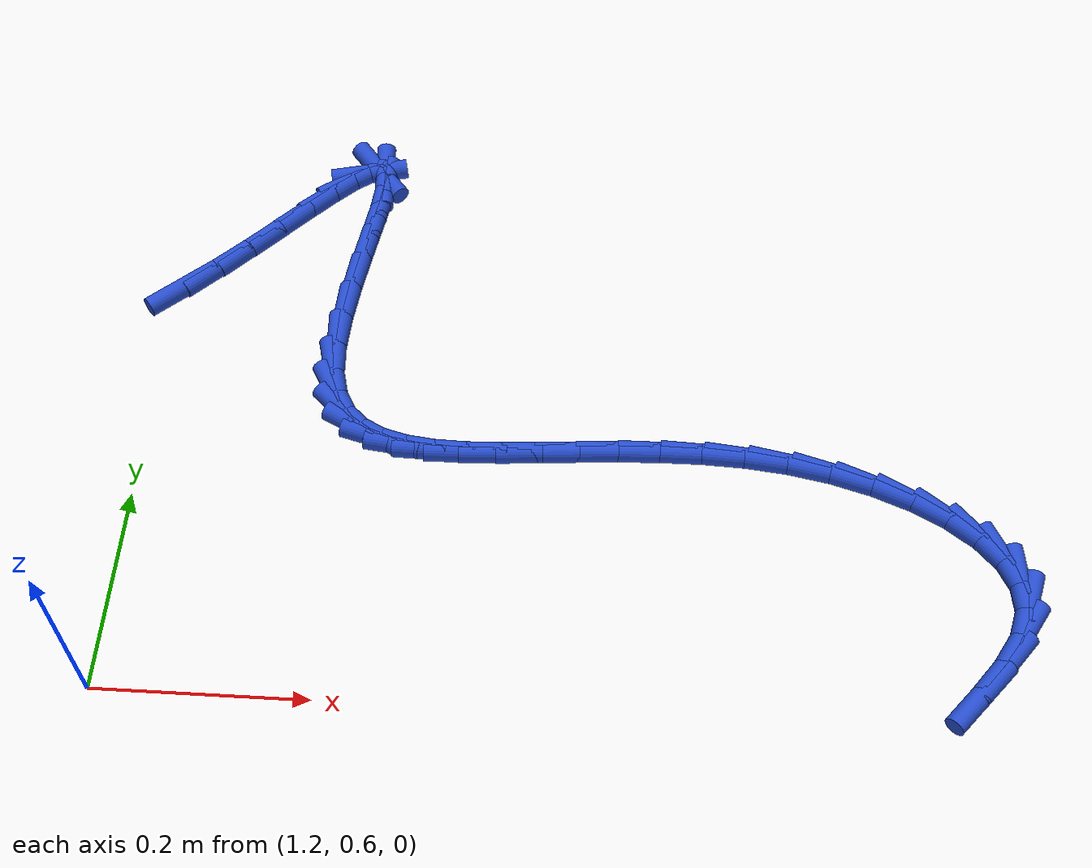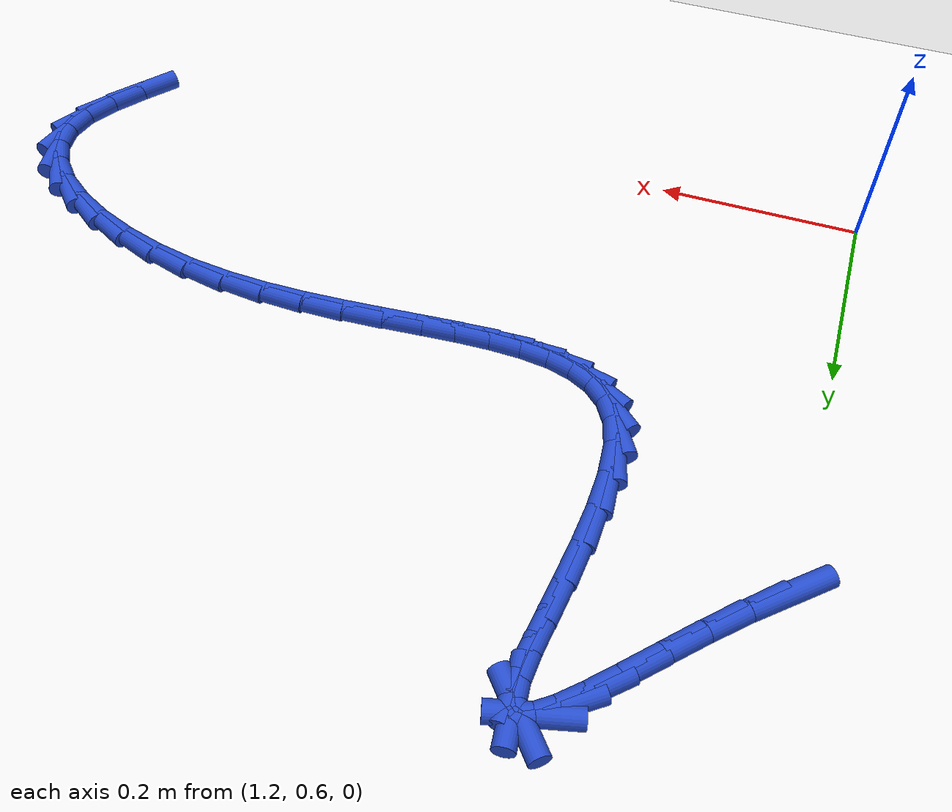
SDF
<sdf version="1.6">
 <world name="default">
  <model name="ground_plane">
   <static>1</static>
   <link name="link">
    <collision name="collision">
     <geometry><plane><normal>0 0 1</normal><size>100 100</size></plane></geometry>
     <surface><friction><ode><mu>100</mu><mu2>50</mu2></ode></friction></surface>
    </collision>
    <visual name="visual">
     <cast_shadows>0</cast_shadows>
     <geometry><plane><normal>0 0 1</normal><size>100 100</size></plane></geometry>
     <material>
      <script><uri>file://media/materials/scripts/gazebo.material</uri><name>Gazebo/WhiteGlow</name></script>
     </material>
    </visual>
   </link>
  </model>
  <model name="line">
   <link name="link_66">
    <pose>1.2069231784694563 1.0390649174627036 0.01 0 1.57 0.7264530151013725</pose>
    <collision name="collision">
     <geometry><cylinder><radius>0.01</radius><length>0.08</length></cylinder></geometry>
    </collision>
    <visual name="visual">
     <material>
      <script><name>Gazebo/Blue</name><uri>file://media/materials/scripts/gazebo.material</uri></script>
     </material>
     <geometry><cylinder><radius>0.01</radius><length>0.08</length></cylinder></geometry>
    </visual>
   </link>
   <link name="link_67">
    <pose>1.2372628866293298 1.0660232660507316 0.01 0 1.57 0.7736406593499286</pose>
    <collision name="collision">
     <geometry><cylinder><radius>0.01</radius><length>0.08</length></cylinder></geometry>
    </collision>
    <visual name="visual">
     <material>
      <script><name>Gazebo/Blue</name><uri>file://media/materials/scripts/gazebo.material</uri></script>
     </material>
     <geometry><cylinder><radius>0.01</radius><length>0.08</length></cylinder></geometry>
    </visual>
   </link>
   <link name="link_68">
    <pose>1.2665523473944107 1.0946319576847547 0.01 0 1.57 0.8011044781243333</pose>
    <collision name="collision">
     <geometry><cylinder><radius>0.01</radius><length>0.08</length></cylinder></geometry>
    </collision>
    <visual name="visual">
     <material>
      <script><name>Gazebo/Blue</name><uri>file://media/materials/scripts/gazebo.material</uri></script>
     </material>
     <geometry><cylinder><radius>0.01</radius><length>0.08</length></cylinder></geometry>
    </visual>
   </link>
   <link name="link_69">
    <pose>1.294223182612607 1.1231859503681776 0.01 0 1.57 0.8104592556146465</pose>
    <collision name="collision">
     <geometry><cylinder><radius>0.01</radius><length>0.08</length></cylinder></geometry>
    </collision>
    <visual name="visual">
     <material>
      <script><name>Gazebo/Blue</name><uri>file://media/materials/scripts/gazebo.material</uri></script>
     </material>
     <geometry><cylinder><radius>0.01</radius><length>0.08</length></cylinder></geometry>
    </visual>
   </link>
   <link name="link_70">
    <pose>1.3197070141318266 1.1499802021044045 0.01 0 1.57 0.7984466257177439</pose>
    <collision name="collision">
     <geometry><cylinder><radius>0.01</radius><length>0.08</length></cylinder></geometry>
    </collision>
    <visual name="visual">
     <material>
      <script><name>Gazebo/Blue</name><uri>file://media/materials/scripts/gazebo.material</uri></script>
     </material>
     <geometry><cylinder><radius>0.01</radius><length>0.08</length></cylinder></geometry>
    </visual>
   </link>
   <link name="link_71">
    <pose>1.342435463799977 1.1733096708968396 0.01 0 1.57 0.7522659317770498</pose>
    <collision name="collision">
     <geometry><cylinder><radius>0.01</radius><length>0.08</length></cylinder></geometry>
    </collision>
    <visual name="visual">
     <material>
      <script><name>Gazebo/Blue</name><uri>file://media/materials/scripts/gazebo.material</uri></script>
     </material>
     <geometry><cylinder><radius>0.01</radius><length>0.08</length></cylinder></geometry>
    </visual>
   </link>
   <link name="link_72">
    <pose>1.361840153464966 1.191469314748888 0.01 0 1.57 0.6289194446462302</pose>
    <collision name="collision">
     <geometry><cylinder><radius>0.01</radius><length>0.08</length></cylinder></geometry>
    </collision>
    <visual name="visual">
     <material>
      <script><name>Gazebo/Blue</name><uri>file://media/materials/scripts/gazebo.material</uri></script>
     </material>
     <geometry><cylinder><radius>0.01</radius><length>0.08</length></cylinder></geometry>
    </visual>
   </link>
   <link name="link_73">
    <pose>1.3773527049747019 1.2027540916639532 0.01 0 1.57 0.2400213735099397</pose>
    <collision name="collision">
     <geometry><cylinder><radius>0.01</radius><length>0.08</length></cylinder></geometry>
    </collision>
    <visual name="visual">
     <material>
      <script><name>Gazebo/Blue</name><uri>file://media/materials/scripts/gazebo.material</uri></script>
     </material>
     <geometry><cylinder><radius>0.01</radius><length>0.08</length></cylinder></geometry>
    </visual>
   </link>
   <link name="link_74">
    <pose>1.3884047401770923 1.2054589596454406 0.01 0 1.57 -0.8916329751993161</pose>
    <collision name="collision">
     <geometry><cylinder><radius>0.01</radius><length>0.08</length></cylinder></geometry>
    </collision>
    <visual name="visual">
     <material>
      <script><name>Gazebo/Blue</name><uri>file://media/materials/scripts/gazebo.material</uri></script>
     </material>
     <geometry><cylinder><radius>0.01</radius><length>0.08</length></cylinder></geometry>
    </visual>
   </link>
   <link name="link_75">
    <pose>1.3944635298059607 1.1979537563542686 0.01 0 1.57 -1.4926427483449498</pose>
    <collision name="collision">
     <geometry><cylinder><radius>0.01</radius><length>0.08</length></cylinder></geometry>
    </collision>
    <visual name="visual">
     <material>
      <script><name>Gazebo/Blue</name><uri>file://media/materials/scripts/gazebo.material</uri></script>
     </material>
     <geometry><cylinder><radius>0.01</radius><length>0.08</length></cylinder></geometry>
    </visual>
   </link>
   <link name="link_76">
    <pose>1.3958397885504943 1.1803799539046456 0.01 0 1.57 1.4877689884094474</pose>
    <collision name="collision">
     <geometry><cylinder><radius>0.01</radius><length>0.08</length></cylinder></geometry>
    </collision>
    <visual name="visual">
     <material>
      <script><name>Gazebo/Blue</name><uri>file://media/materials/scripts/gazebo.material</uri></script>
     </material>
     <geometry><cylinder><radius>0.01</radius><length>0.08</length></cylinder></geometry>
    </visual>
   </link>
   <link name="link_77">
    <pose>1.3937009521776211 1.1546785471514847 0.01 0 1.57 1.4318504602034439</pose>
    <collision name="collision">
     <geometry><cylinder><radius>0.01</radius><length>0.08</length></cylinder></geometry>
    </collision>
    <visual name="visual">
     <material>
      <script><name>Gazebo/Blue</name><uri>file://media/materials/scripts/gazebo.material</uri></script>
     </material>
     <geometry><cylinder><radius>0.01</radius><length>0.08</length></cylinder></geometry>
    </visual>
   </link>
   <link name="link_78">
    <pose>1.3892527609677348 1.1228709886912491 0.01 0 1.57 1.417332769120097</pose>
    <collision name="collision">
     <geometry><cylinder><radius>0.01</radius><length>0.08</length></cylinder></geometry>
    </collision>
    <visual name="visual">
     <material>
      <script><name>Gazebo/Blue</name><uri>file://media/materials/scripts/gazebo.material</uri></script>
     </material>
     <geometry><cylinder><radius>0.01</radius><length>0.08</length></cylinder></geometry>
    </visual>
   </link>
   <link name="link_79">
    <pose>1.38370095520123 1.086978731120404 0.01 0 1.57 1.4281902014077674</pose>
    <collision name="collision">
     <geometry><cylinder><radius>0.01</radius><length>0.08</length></cylinder></geometry>
    </collision>
    <visual name="visual">
     <material>
      <script><name>Gazebo/Blue</name><uri>file://media/materials/scripts/gazebo.material</uri></script>
     </material>
     <geometry><cylinder><radius>0.01</radius><length>0.08</length></cylinder></geometry>
    </visual>
   </link>
   <link name="link_80">
    <pose>1.378251275158501 1.049023227035412 0.01 0 1.57 1.4622221283548353</pose>
    <collision name="collision">
     <geometry><cylinder><radius>0.01</radius><length>0.08</length></cylinder></geometry>
    </collision>
    <visual name="visual">
     <material>
      <script><name>Gazebo/Blue</name><uri>file://media/materials/scripts/gazebo.material</uri></script>
     </material>
     <geometry><cylinder><radius>0.01</radius><length>0.08</length></cylinder></geometry>
    </visual>
   </link>
   <link name="link_81">
    <pose>1.3741094611199414 1.0110259290327375 0.01 0 1.57 1.5256212396820565</pose>
    <collision name="collision">
     <geometry><cylinder><radius>0.01</radius><length>0.08</length></cylinder></geometry>
    </collision>
    <visual name="visual">
     <material>
      <script><name>Gazebo/Blue</name><uri>file://media/materials/scripts/gazebo.material</uri></script>
     </material>
     <geometry><cylinder><radius>0.01</radius><length>0.08</length></cylinder></geometry>
    </visual>
   </link>
   <link name="link_82">
    <pose>1.3724812533659456 0.9750082897088439 0.01 0 1.57 -1.5055746131538927</pose>
    <collision name="collision">
     <geometry><cylinder><radius>0.01</radius><length>0.08</length></cylinder></geometry>
    </collision>
    <visual name="visual">
     <material>
      <script><name>Gazebo/Blue</name><uri>file://media/materials/scripts/gazebo.material</uri></script>
     </material>
     <geometry><cylinder><radius>0.01</radius><length>0.08</length></cylinder></geometry>
    </visual>
   </link>
   <link name="link_83">
    <pose>1.374572392176908 0.9429917616601949 0.01 0 1.57 -1.3139538369100603</pose>
    <collision name="collision">
     <geometry><cylinder><radius>0.01</radius><length>0.08</length></cylinder></geometry>
    </collision>
    <visual name="visual">
     <material>
      <script><name>Gazebo/Blue</name><uri>file://media/materials/scripts/gazebo.material</uri></script>
     </material>
     <geometry><cylinder><radius>0.01</radius><length>0.08</length></cylinder></geometry>
    </visual>
   </link>
   <link name="link_84">
    <pose>1.381458018715188 0.916775126084228 0.01 0 1.57 -1.0457845037083737</pose>
    <collision name="collision">
     <geometry><cylinder><radius>0.01</radius><length>0.08</length></cylinder></geometry>
    </collision>
    <visual name="visual">
     <material>
      <script><name>Gazebo/Blue</name><uri>file://media/materials/scripts/gazebo.material</uri></script>
     </material>
     <geometry><cylinder><radius>0.01</radius><length>0.08</length></cylinder></geometry>
    </visual>
   </link>
   <link name="link_85">
    <pose>1.3932215920797748 0.8964663469985648 0.01 0 1.57 -0.7470901557627078</pose>
    <collision name="collision">
     <geometry><cylinder><radius>0.01</radius><length>0.08</length></cylinder></geometry>
    </collision>
    <visual name="visual">
     <material>
      <script><name>Gazebo/Blue</name><uri>file://media/materials/scripts/gazebo.material</uri></script>
     </material>
     <geometry><cylinder><radius>0.01</radius><length>0.08</length></cylinder></geometry>
    </visual>
   </link>
   <link name="link_86">
    <pose>1.4094915220253605 0.8813975296275515 0.01 0 1.57 -0.4753283712765085</pose>
    <collision name="collision">
     <geometry><cylinder><radius>0.01</radius><length>0.08</length></cylinder></geometry>
    </collision>
    <visual name="visual">
     <material>
      <script><name>Gazebo/Blue</name><uri>file://media/materials/scripts/gazebo.material</uri></script>
     </material>
     <geometry><cylinder><radius>0.01</radius><length>0.08</length></cylinder></geometry>
    </visual>
   </link>
   <link name="link_87">
    <pose>1.4298938352395563 0.8708967160679356 0.01 0 1.57 -0.26684828589218396</pose>
    <collision name="collision">
     <geometry><cylinder><radius>0.01</radius><length>0.08</length></cylinder></geometry>
    </collision>
    <visual name="visual">
     <material>
      <script><name>Gazebo/Blue</name><uri>file://media/materials/scripts/gazebo.material</uri></script>
     </material>
     <geometry><cylinder><radius>0.01</radius><length>0.08</length></cylinder></geometry>
    </visual>
   </link>
   <link name="link_88">
    <pose>1.4540545584099718 0.8642919484164635 0.01 0 1.57 -0.12212152070587275</pose>
    <collision name="collision">
     <geometry><cylinder><radius>0.01</radius><length>0.08</length></cylinder></geometry>
    </collision>
    <visual name="visual">
     <material>
      <script><name>Gazebo/Blue</name><uri>file://media/materials/scripts/gazebo.material</uri></script>
     </material>
     <geometry><cylinder><radius>0.01</radius><length>0.08</length></cylinder></geometry>
    </visual>
   </link>
   <link name="link_89">
    <pose>1.4815997182242193 0.8609112687698827 0.01 0 1.57 -0.027109463867492484</pose>
    <collision name="collision">
     <geometry><cylinder><radius>0.01</radius><length>0.08</length></cylinder></geometry>
    </collision>
    <visual name="visual">
     <material>
      <script><name>Gazebo/Blue</name><uri>file://media/materials/scripts/gazebo.material</uri></script>
     </material>
     <geometry><cylinder><radius>0.01</radius><length>0.08</length></cylinder></geometry>
    </visual>
   </link>
   <link name="link_90">
    <pose>1.512155341369909 0.8600827192249395 0.01 0 1.57 0.031672312779127826</pose>
    <collision name="collision">
     <geometry><cylinder><radius>0.01</radius><length>0.08</length></cylinder></geometry>
    </collision>
    <visual name="visual">
     <material>
      <script><name>Gazebo/Blue</name><uri>file://media/materials/scripts/gazebo.material</uri></script>
     </material>
     <geometry><cylinder><radius>0.01</radius><length>0.08</length></cylinder></geometry>
    </visual>
   </link>
   <link name="link_91">
    <pose>1.5453474545346522 0.8611343418783811 0.01 0 1.57 0.06365273291209796</pose>
    <collision name="collision">
     <geometry><cylinder><radius>0.01</radius><length>0.08</length></cylinder></geometry>
    </collision>
    <visual name="visual">
     <material>
      <script><name>Gazebo/Blue</name><uri>file://media/materials/scripts/gazebo.material</uri></script>
     </material>
     <geometry><cylinder><radius>0.01</radius><length>0.08</length></cylinder></geometry>
    </visual>
   </link>
   <link name="link_92">
    <pose>1.580802084406059 0.8633941788269547 0.01 0 1.57 0.07473616466921419</pose>
    <collision name="collision">
     <geometry><cylinder><radius>0.01</radius><length>0.08</length></cylinder></geometry>
    </collision>
    <visual name="visual">
     <material>
      <script><name>Gazebo/Blue</name><uri>file://media/materials/scripts/gazebo.material</uri></script>
     </material>
     <geometry><cylinder><radius>0.01</radius><length>0.08</length></cylinder></geometry>
    </visual>
   </link>
   <link name="link_93">
    <pose>1.6181452576717408 0.8661902721674067 0.01 0 1.57 0.06835823287399723</pose>
    <collision name="collision">
     <geometry><cylinder><radius>0.01</radius><length>0.08</length></cylinder></geometry>
    </collision>
    <visual name="visual">
     <material>
      <script><name>Gazebo/Blue</name><uri>file://media/materials/scripts/gazebo.material</uri></script>
     </material>
     <geometry><cylinder><radius>0.01</radius><length>0.08</length></cylinder></geometry>
    </visual>
   </link>
   <link name="link_94">
    <pose>1.6570030010193089 0.8688506639964846 0.01 0 1.57 0.04628714742309383</pose>
    <collision name="collision">
     <geometry><cylinder><radius>0.01</radius><length>0.08</length></cylinder></geometry>
    </collision>
    <visual name="visual">
     <material>
      <script><name>Gazebo/Blue</name><uri>file://media/materials/scripts/gazebo.material</uri></script>
     </material>
     <geometry><cylinder><radius>0.01</radius><length>0.08</length></cylinder></geometry>
    </visual>
   </link>
   <link name="link_95">
    <pose>1.6970013411363734 0.870703396410935 0.01 0 1.57 0.00915258214926092</pose>
    <collision name="collision">
     <geometry><cylinder><radius>0.01</radius><length>0.08</length></cylinder></geometry>
    </collision>
    <visual name="visual">
     <material>
      <script><name>Gazebo/Blue</name><uri>file://media/materials/scripts/gazebo.material</uri></script>
     </material>
     <geometry><cylinder><radius>0.01</radius><length>0.08</length></cylinder></geometry>
    </visual>
   </link>
   <link name="link_96">
    <pose>1.7377663047105454 0.8710765115075048 0.01 0 1.57 -0.0431840987931051</pose>
    <collision name="collision">
     <geometry><cylinder><radius>0.01</radius><length>0.08</length></cylinder></geometry>
    </collision>
    <visual name="visual">
     <material>
      <script><name>Gazebo/Blue</name><uri>file://media/materials/scripts/gazebo.material</uri></script>
     </material>
     <geometry><cylinder><radius>0.01</radius><length>0.08</length></cylinder></geometry>
    </visual>
   </link>
   <link name="link_97">
    <pose>1.7789239184294354 0.869298051382941 0.01 0 1.57 -0.11130129365006293</pose>
    <collision name="collision">
     <geometry><cylinder><radius>0.01</radius><length>0.08</length></cylinder></geometry>
    </collision>
    <visual name="visual">
     <material>
      <script><name>Gazebo/Blue</name><uri>file://media/materials/scripts/gazebo.material</uri></script>
     </material>
     <geometry><cylinder><radius>0.01</radius><length>0.08</length></cylinder></geometry>
    </visual>
   </link>
   <link name="link_98">
    <pose>1.820100208980655 0.8646960581339906 0.01 0 1.57 -0.1944995879628884</pose>
    <collision name="collision">
     <geometry><cylinder><radius>0.01</radius><length>0.08</length></cylinder></geometry>
    </collision>
    <visual name="visual">
     <material>
      <script><name>Gazebo/Blue</name><uri>file://media/materials/scripts/gazebo.material</uri></script>
     </material>
     <geometry><cylinder><radius>0.01</radius><length>0.08</length></cylinder></geometry>
    </visual>
   </link>
   <link name="link_99">
    <pose>1.8608536723458358 0.8566680364730985 0.01 0 1.57 -0.28379136255834575</pose>
    <collision name="collision">
     <geometry><cylinder><radius>0.01</radius><length>0.08</length></cylinder></geometry>
    </collision>
    <visual name="visual">
     <material>
      <script><name>Gazebo/Blue</name><uri>file://media/materials/scripts/gazebo.material</uri></script>
     </material>
     <geometry><cylinder><radius>0.01</radius><length>0.08</length></cylinder></geometry>
    </visual>
   </link>
   <link name="link_100">
    <pose>1.9001697162898608 0.8452009741631712 0.01 0 1.57 -0.38031433691884625</pose>
    <collision name="collision">
     <geometry><cylinder><radius>0.01</radius><length>0.08</length></cylinder></geometry>
    </collision>
    <visual name="visual">
     <material>
      <script><name>Gazebo/Blue</name><uri>file://media/materials/scripts/gazebo.material</uri></script>
     </material>
     <geometry><cylinder><radius>0.01</radius><length>0.08</length></cylinder></geometry>
    </visual>
   </link>
   <link name="link_101">
    <pose>1.9367447777157962 0.8305790966700447 0.01 0 1.57 -0.4933442103924053</pose>
    <collision name="collision">
     <geometry><cylinder><radius>0.01</radius><length>0.08</length></cylinder></geometry>
    </collision>
    <visual name="visual">
     <material>
      <script><name>Gazebo/Blue</name><uri>file://media/materials/scripts/gazebo.material</uri></script>
     </material>
     <geometry><cylinder><radius>0.01</radius><length>0.08</length></cylinder></geometry>
    </visual>
   </link>
   <link name="link_102">
    <pose>1.9692730817501582 0.8130889045103198 0.01 0 1.57 -0.6361646513380685</pose>
    <collision name="collision">
     <geometry><cylinder><radius>0.01</radius><length>0.08</length></cylinder></geometry>
    </collision>
    <visual name="visual">
     <material>
      <script><name>Gazebo/Blue</name><uri>file://media/materials/scripts/gazebo.material</uri></script>
     </material>
     <geometry><cylinder><radius>0.01</radius><length>0.08</length></cylinder></geometry>
    </visual>
   </link>
   <link name="link_103">
    <pose>1.9964488535194629 0.7930168982005971 0.01 0 1.57 -0.8285069090110242</pose>
    <collision name="collision">
     <geometry><cylinder><radius>0.01</radius><length>0.08</length></cylinder></geometry>
    </collision>
    <visual name="visual">
     <material>
      <script><name>Gazebo/Blue</name><uri>file://media/materials/scripts/gazebo.material</uri></script>
     </material>
     <geometry><cylinder><radius>0.01</radius><length>0.08</length></cylinder></geometry>
    </visual>
   </link>
   <link name="link_104">
    <pose>2.016966318150228 0.7706495782574774 0.01 0 1.57 -1.0952314213675918</pose>
    <collision name="collision">
     <geometry><cylinder><radius>0.01</radius><length>0.08</length></cylinder></geometry>
    </collision>
    <visual name="visual">
     <material>
      <script><name>Gazebo/Blue</name><uri>file://media/materials/scripts/gazebo.material</uri></script>
     </material>
     <geometry><cylinder><radius>0.01</radius><length>0.08</length></cylinder></geometry>
    </visual>
   </link>
   <link name="link_105">
    <pose>2.0295197007689696 0.7462734451975612 0.01 0 1.57 -1.445640845162856</pose>
    <collision name="collision">
     <geometry><cylinder><radius>0.01</radius><length>0.08</length></cylinder></geometry>
    </collision>
    <visual name="visual">
     <material>
      <script><name>Gazebo/Blue</name><uri>file://media/materials/scripts/gazebo.material</uri></script>
     </material>
     <geometry><cylinder><radius>0.01</radius><length>0.08</length></cylinder></geometry>
    </visual>
   </link>
   <link name="link_106">
    <pose>2.032803226502206 0.7201749995374491 0.01 0 1.57 1.314193356480772</pose>
    <collision name="collision">
     <geometry><cylinder><radius>0.01</radius><length>0.08</length></cylinder></geometry>
    </collision>
    <visual name="visual">
     <material>
      <script><name>Gazebo/Blue</name><uri>file://media/materials/scripts/gazebo.material</uri></script>
     </material>
     <geometry><cylinder><radius>0.01</radius><length>0.08</length></cylinder></geometry>
    </visual>
   </link>
   <link name="link_107">
    <pose>2.025580193171324 0.6926468720504118 0.01 0 1.57 1.041790777360385</pose>
    <collision name="collision">
     <geometry><cylinder><radius>0.01</radius><length>0.08</length></cylinder></geometry>
    </collision>
    <visual name="visual">
     <material>
      <script><name>Gazebo/Blue</name><uri>file://media/materials/scripts/gazebo.material</uri></script>
     </material>
     <geometry><cylinder><radius>0.01</radius><length>0.08</length></cylinder></geometry>
    </visual>
   </link>
   <link name="link_108">
    <pose>2.008943934508457 0.6641884860521307 0.01 0 1.57 0.9131011792706407</pose>
    <collision name="collision">
     <geometry><cylinder><radius>0.01</radius><length>0.08</length></cylinder></geometry>
    </collision>
    <visual name="visual">
     <material>
      <script><name>Gazebo/Blue</name><uri>file://media/materials/scripts/gazebo.material</uri></script>
     </material>
     <geometry><cylinder><radius>0.01</radius><length>0.08</length></cylinder></geometry>
    </visual>
   </link>
   <link name="link_109">
    <pose>1.9868237857315332 0.6355509622483653 0.01 0 1.57 0.8733722089564436</pose>
    <collision name="collision">
     <geometry><cylinder><radius>0.01</radius><length>0.08</length></cylinder></geometry>
    </collision>
    <visual name="visual">
     <material>
      <script><name>Gazebo/Blue</name><uri>file://media/materials/scripts/gazebo.material</uri></script>
     </material>
     <geometry><cylinder><radius>0.01</radius><length>0.08</length></cylinder></geometry>
    </visual>
   </link>
  </model>
 </world>
</sdf>
